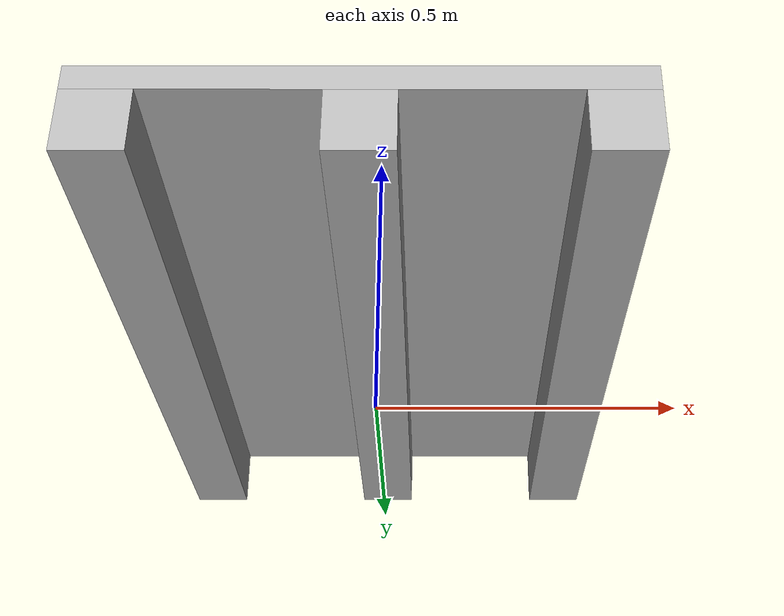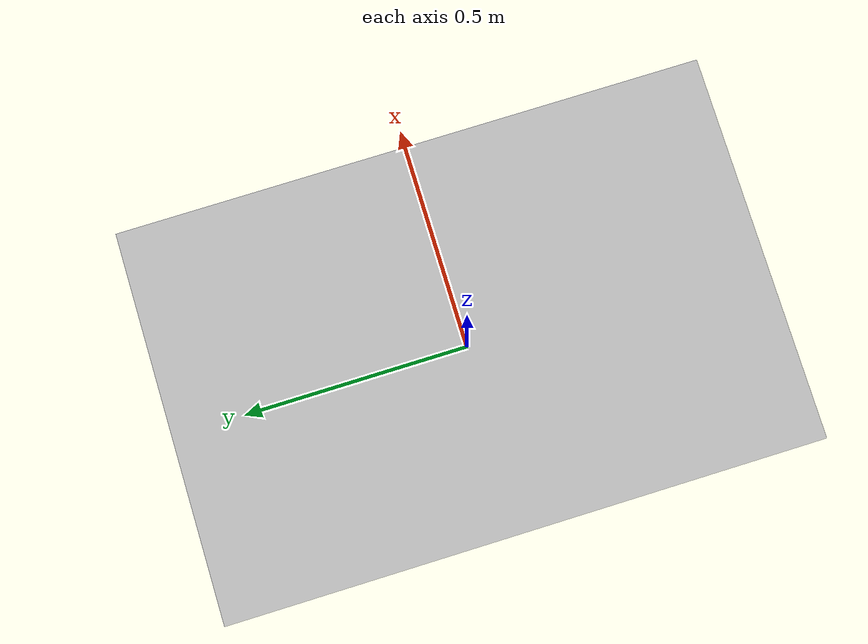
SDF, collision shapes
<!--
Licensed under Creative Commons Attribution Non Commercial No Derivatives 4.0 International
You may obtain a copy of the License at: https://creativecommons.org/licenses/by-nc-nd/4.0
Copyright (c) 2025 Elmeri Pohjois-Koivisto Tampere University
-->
<?xml version='1.0'?>

<sdf version='1.6'>
  <model name='pallet'>
    <!--https://gazebosim.org/api/sim/8/classgz_1_1sim_1_1systems_1_1PosePublisher.html-->
    <!--PosePublisher does not yet support topic renaming: https://github.com/gazebosim/gz-sim/issues/1585
    So the renaming is done in the global_ros_gz_bridge config
    -->
    <plugin
        filename="gz-sim-pose-publisher-system"
        name="gz::sim::systems::PosePublisher">

        <publish_link_pose>false</publish_link_pose>
        <publish_collision_pose>false</publish_collision_pose>
        <publish_visual_pose>false</publish_visual_pose>
        <publish_nested_model_pose>true</publish_nested_model_pose>
        <publish_model_pose>true</publish_model_pose>
        <use_pose_vector_msg>true</use_pose_vector_msg>
    </plugin>

    <pose frame=''>0 0 0.07 0 0 0</pose>
    <self_collide>false</self_collide>
    <!-- BASE_LINK FRAME -->
    <link name='pallet_base'>
      <pose frame=''>0 0 0 0 0 1.57</pose>
      <collision name="pallet_top_collision">
        <pose>0 0 0.125 0 0 0</pose>
        <geometry>
          <box>
            <size>1.22 0.8 0.04</size>
          </box>
        </geometry>
      </collision>
      <collision name="pallet_center_collision">
        <pose>0 0 0.055 0 0 0</pose>
        <geometry>
          <box>
            <size>1.22 0.1 0.1</size>
          </box>
        </geometry>
      </collision>
      <collision name="pallet_left_collision">
        <pose>0 -0.35 0.055 0 0 0</pose>
        <geometry>
          <box>
            <size>1.22 0.1 0.1</size>
          </box>
        </geometry>
      </collision>
      <collision name="pallet_right_collision">
        <pose>0 0.35 0.055 0 0 0</pose>
        <geometry>
          <box>
            <size>1.22 0.1 0.1</size>
          </box>
        </geometry>
      </collision>
      <visual name='pallet_visual'>
        <pose frame=''>0 0 0 0 0 0</pose>
        <geometry>
          <mesh>
            <scale>1 1 1</scale>
            <!--model resolves to the share directory-->
            <uri>model://pallet/meshes/pallet.dae</uri>
          </mesh>
        </geometry>
      </visual>
    </link>
    <static>0</static>
  </model>
</sdf>
